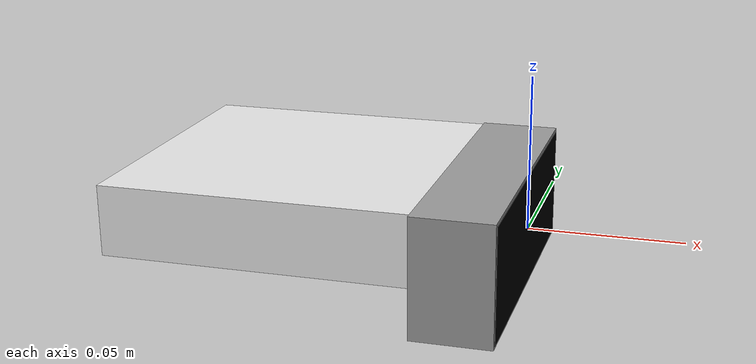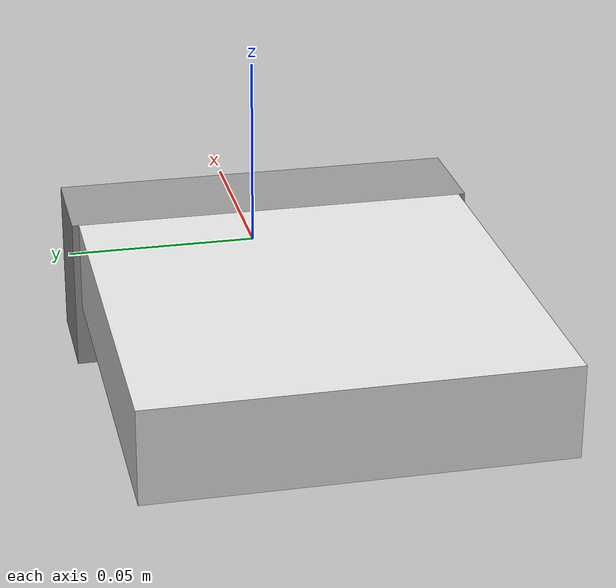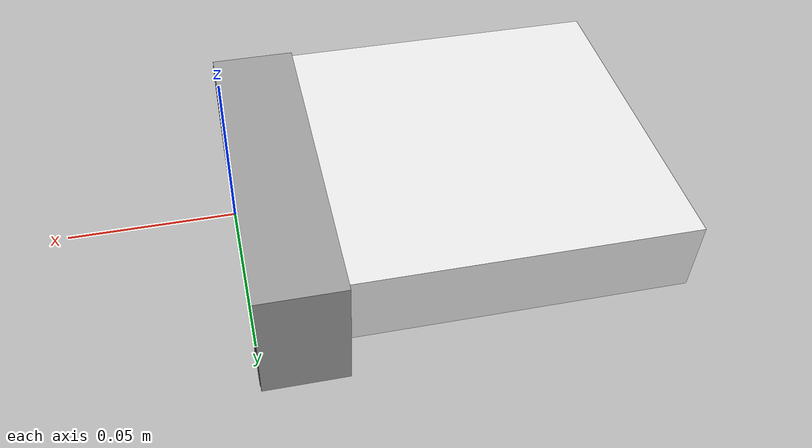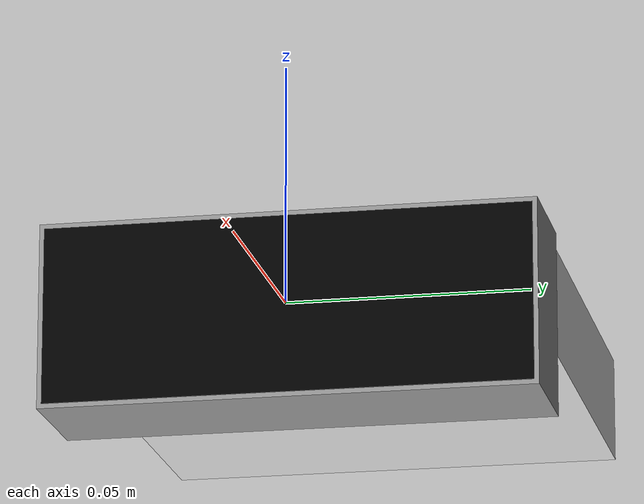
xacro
<?xml version="1.0"?>
<!--
 Copyright (c) Microsoft Corporation. All rights reserved.
 Licensed under the MIT License.
 -->

<robot name="azure-kinect" xmlns:xacro="http://www.ros.org/wiki/xacro">
  <xacro:arg name="tf_prefix" default=""/>
  <material name="black">
    <color rgba="0. 0. 0. 1" />
  </material>
  <material name="dark_grey">
    <color rgba="0.1 0.1 0.1 1" />
  </material>
  <material name="grey">
    <color rgba="0.6 0.6 0.6 1" />
  </material>
  <material name="white">
    <color rgba="0.9 0.9 0.9 1" />
  </material>

  <link name="$(arg tf_prefix)camera_body">
    <visual>
      <origin xyz="0. 0. 0." />
      <geometry>
        <box size="0.0994 0.0996 0.023" />
      </geometry>
      <material name="white" />
    </visual>
    <collision>
      <origin xyz="0. 0. 0." />
      <geometry>
        <box size="0.0994 0.0996 0.023" />
      </geometry>
    </collision>
    <inertial>
      <mass value="0.1" />
      <origin xyz="0 0 0" rpy="0 0 0"/>
      <inertia ixx="0.01" ixy="0" ixz="0" iyy="0.01" iyz="0" izz="0.01" />
    </inertial>
  </link>
  <gazebo reference="$(arg tf_prefix)camera_body">
    <material>Gazebo/white</material>
  </gazebo>

  <link name="$(arg tf_prefix)camera_base">
    <visual>
      <origin xyz="-0.013 0. 0." />
      <geometry>
        <box size="0.026 0.103 0.039" />
      </geometry>
      <material name="grey" />
    </visual>
    <collision>
      <origin xyz="-0.013 0. 0." />
      <geometry>
        <box size="0.026 0.103 0.039" />
      </geometry>
    </collision>
    <inertial>
      <mass value="0.1" />
      <origin xyz="-0.013 0. 0." rpy="0 0 0"/>
      <inertia ixx="0.01" ixy="0" ixz="0" iyy="0.01" iyz="0" izz="0.01" />
    </inertial>
  </link>
  <gazebo reference="$(arg tf_prefix)camera_base">
    <material>Gazebo/Grey</material>
  </gazebo>

  <link name="$(arg tf_prefix)camera_visor">
    <visual>
      <origin xyz="-0.0128 0. 0." />
      <geometry>
        <box size="0.026 0.101 0.037" />
      </geometry>
      <material name="black" />
    </visual>
    <collision>
      <origin xyz="-0.0128 0. 0." />
      <geometry>
        <box size="0.026 0.101 0.037" />
      </geometry>
    </collision>
    <inertial>
      <mass value="0.1" />
      <origin xyz="-0.0128 0. 0." rpy="0 0 0"/>
      <inertia ixx="0.01" ixy="0" ixz="0" iyy="0.01" iyz="0" izz="0.01" />
    </inertial>
  </link>
  <gazebo reference="$(arg tf_prefix)camera_visor">
    <material>Gazebo/Black</material>
  </gazebo>

  <joint name="$(arg tf_prefix)camera_base_to_body" type="fixed">
    <parent link="$(arg tf_prefix)camera_base" />
    <child link="$(arg tf_prefix)camera_body" />
    <origin xyz="-0.0757 0. 0.008" rpy="0. 0. 0." />
  </joint>

  <joint name="$(arg tf_prefix)camera_base_to_visor" type="fixed">
    <parent link="$(arg tf_prefix)camera_base" />
    <child link="$(arg tf_prefix)camera_visor" />
    <origin xyz="0. 0. 0." rpy="0. 0. 0." />
  </joint>

  <link name="$(arg tf_prefix)camera_sensor" />
  <joint name="$(arg tf_prefix)camera_visor_to_sensor" type="fixed">
    <parent link="$(arg tf_prefix)camera_visor" />
    <child link="$(arg tf_prefix)camera_sensor" />
    <origin xyz="0. 0. 0." rpy="-1.57 0 -1.57" />
  </joint>

  <gazebo reference="$(arg tf_prefix)camera_visor">
    <sensor type="depth" name="kinect_dk_720p">
      <always_on>1</always_on>
      <visualize>0</visualize>
      <update_rate>30.0</update_rate>
      <camera>
        <horizontal_fov>1.3962634</horizontal_fov>
        <image>
          <width>1280</width>
          <height>720</height>
          <format>R8G8B8</format>
        </image>
        <clip>
          <near>0.02</near>
          <far>150</far>
        </clip>
        <noise>
          <type>gaussian</type>
          <!-- Noise is sampled independently per pixel on each frame.
               That pixel's noise value is added to each of its color
               channels, which at that point lie in the range [0,1]. -->
          <mean>0.0</mean>
          <stddev>0.007</stddev>
        </noise>
      </camera>
      <plugin name="camera_controller" filename="libgazebo_ros_openni_kinect.so">
          <baseline>0.2</baseline>
          <alwaysOn>1</alwaysOn>
          <updateRate>30.0</updateRate>
          <robotNamespace></robotNamespace>
          <cameraName>camera</cameraName>
          <frameName>/$(arg tf_prefix)camera_sensor</frameName>
          <imageTopicName>rgb/image_raw</imageTopicName>
          <depthImageTopicName>depth/image_raw</depthImageTopicName>
          <pointCloudTopicName>depth/points</pointCloudTopicName>
          <cameraInfoTopicName>rgb/camera_info</cameraInfoTopicName>
          <depthImageCameraInfoTopicName>depth/camera_info</depthImageCameraInfoTopicName>
          <pointCloudCutoff>0.4</pointCloudCutoff>
          <hackBaseline>0.07</hackBaseline>
          <distortionK1>0.0</distortionK1>
          <distortionK2>0.0</distortionK2>
          <distortionK3>0.0</distortionK3>
          <distortionT1>0.0</distortionT1>
          <distortionT2>0.0</distortionT2>
          <CxPrime>0.0</CxPrime>
          <Cx>0.0</Cx>
          <Cy>0.0</Cy>
          <focalLength>0</focalLength>
          <hackBaseline>0</hackBaseline>
        </plugin>
    </sensor>
  </gazebo>
</robot>
